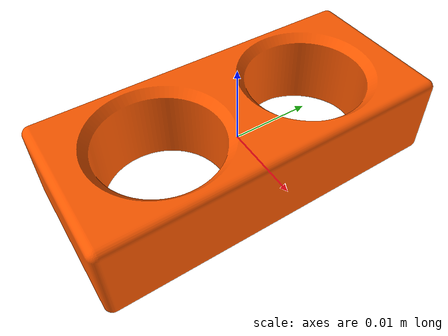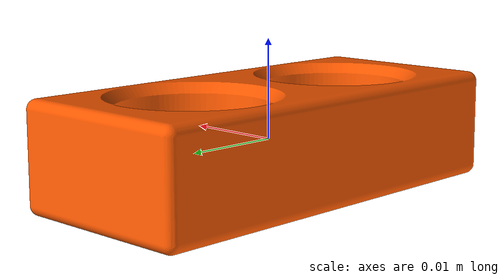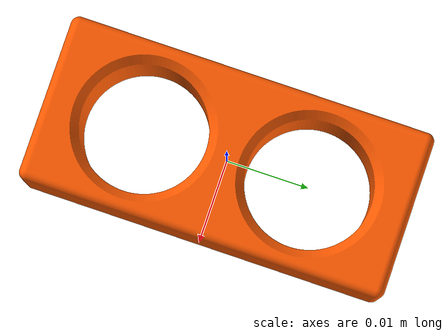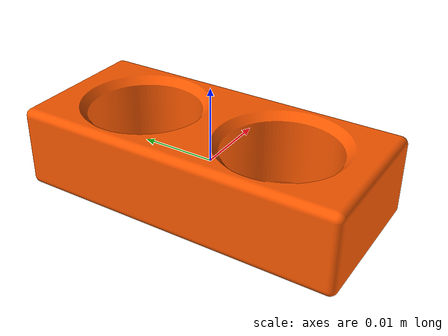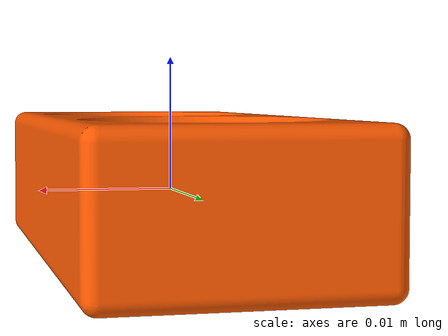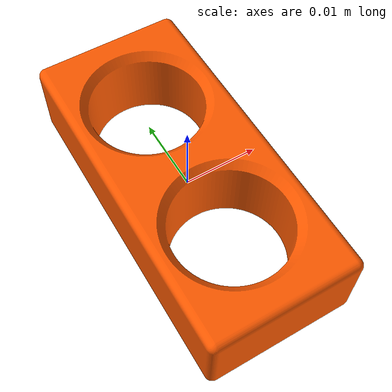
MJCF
<mujoco model="toy_five_insertion_two">
  <default>
    <default class="toy_five_insertion_two_visual">
      <geom group="2" type="mesh" contype="0" conaffinity="0"/>
    </default>
    <default class="toy_five_insertion_two_collision">
      <geom group="3" type="mesh"/>
    </default>
  </default>
  <asset>
    <material name="toy_five_insertion_two_material" specular="0.5" shininess="0.5" rgba="1 0.35152912 0 1"/>
    <mesh file="toy_five_insertion_two.obj"/>
    <mesh file="toy_five_insertion_two_collision_0.obj"/>
    <mesh file="toy_five_insertion_two_collision_1.obj"/>
    <mesh file="toy_five_insertion_two_collision_2.obj"/>
    <mesh file="toy_five_insertion_two_collision_3.obj"/>
    <mesh file="toy_five_insertion_two_collision_4.obj"/>
    <mesh file="toy_five_insertion_two_collision_5.obj"/>
    <mesh file="toy_five_insertion_two_collision_6.obj"/>
    <mesh file="toy_five_insertion_two_collision_7.obj"/>
    <mesh file="toy_five_insertion_two_collision_8.obj"/>
    <mesh file="toy_five_insertion_two_collision_9.obj"/>
    <mesh file="toy_five_insertion_two_collision_10.obj"/>
    <mesh file="toy_five_insertion_two_collision_11.obj"/>
    <mesh file="toy_five_insertion_two_collision_12.obj"/>
    <mesh file="toy_five_insertion_two_collision_13.obj"/>
    <mesh file="toy_five_insertion_two_collision_14.obj"/>
    <mesh file="toy_five_insertion_two_collision_15.obj"/>
    <mesh file="toy_five_insertion_two_collision_16.obj"/>
    <mesh file="toy_five_insertion_two_collision_17.obj"/>
    <mesh file="toy_five_insertion_two_collision_18.obj"/>
    <mesh file="toy_five_insertion_two_collision_19.obj"/>
    <mesh file="toy_five_insertion_two_collision_20.obj"/>
    <mesh file="toy_five_insertion_two_collision_21.obj"/>
    <mesh file="toy_five_insertion_two_collision_22.obj"/>
    <mesh file="toy_five_insertion_two_collision_23.obj"/>
    <mesh file="toy_five_insertion_two_collision_24.obj"/>
    <mesh file="toy_five_insertion_two_collision_25.obj"/>
    <mesh file="toy_five_insertion_two_collision_26.obj"/>
    <mesh file="toy_five_insertion_two_collision_27.obj"/>
    <mesh file="toy_five_insertion_two_collision_28.obj"/>
    <mesh file="toy_five_insertion_two_collision_29.obj"/>
    <mesh file="toy_five_insertion_two_collision_30.obj"/>
    <mesh file="toy_five_insertion_two_collision_31.obj"/>
    <mesh file="toy_five_insertion_two_collision_32.obj"/>
    <mesh file="toy_five_insertion_two_collision_33.obj"/>
    <mesh file="toy_five_insertion_two_collision_34.obj"/>
    <mesh file="toy_five_insertion_two_collision_35.obj"/>
    <mesh file="toy_five_insertion_two_collision_36.obj"/>
    <mesh file="toy_five_insertion_two_collision_37.obj"/>
    <mesh file="toy_five_insertion_two_collision_38.obj"/>
    <mesh file="toy_five_insertion_two_collision_39.obj"/>
    <mesh file="toy_five_insertion_two_collision_40.obj"/>
    <mesh file="toy_five_insertion_two_collision_41.obj"/>
  </asset>
  <worldbody>
    <body name="toy_five_insertion_two">
      <freejoint/>
      <geom material="toy_five_insertion_two_material" mesh="toy_five_insertion_two" class="toy_five_insertion_two_visual"/>
      <geom mesh="toy_five_insertion_two_collision_0" rgba="0.7994798533171938 0.9375432703284283 0.09707981335659155 1" class="toy_five_insertion_two_collision"/>
      <geom mesh="toy_five_insertion_two_collision_1" rgba="0.8934029678936114 0.9846819172238179 0.1916098615617452 1" class="toy_five_insertion_two_collision"/>
      <geom mesh="toy_five_insertion_two_collision_2" rgba="0.5369274378740223 0.6995427998961804 0.5794552580709885 1" class="toy_five_insertion_two_collision"/>
      <geom mesh="toy_five_insertion_two_collision_3" rgba="0.40999450267614235 0.6388397226716457 0.9910736526907409 1" class="toy_five_insertion_two_collision"/>
      <geom mesh="toy_five_insertion_two_collision_4" rgba="0.437431734262836 0.2568467392059577 0.1395890422095284 1" class="toy_five_insertion_two_collision"/>
      <geom mesh="toy_five_insertion_two_collision_5" rgba="0.3522389222467359 0.42940041138632457 0.7189049323124501 1" class="toy_five_insertion_two_collision"/>
      <geom mesh="toy_five_insertion_two_collision_6" rgba="0.8298101174327739 0.23068424015206923 0.32620563506871114 1" class="toy_five_insertion_two_collision"/>
      <geom mesh="toy_five_insertion_two_collision_7" rgba="0.5034178306036098 0.3360624863992532 0.7259439574362953 1" class="toy_five_insertion_two_collision"/>
      <geom mesh="toy_five_insertion_two_collision_8" rgba="0.10751519422101152 0.4052400356083793 0.8055384846424208 1" class="toy_five_insertion_two_collision"/>
      <geom mesh="toy_five_insertion_two_collision_9" rgba="0.5119149387572031 0.6617983917930427 0.6286808097330435 1" class="toy_five_insertion_two_collision"/>
      <geom mesh="toy_five_insertion_two_collision_10" rgba="0.8629761442540558 0.891814664044404 0.013639052107590532 1" class="toy_five_insertion_two_collision"/>
      <geom mesh="toy_five_insertion_two_collision_11" rgba="0.48451544070558983 0.6729833306055614 0.0036289572756447175 1" class="toy_five_insertion_two_collision"/>
      <geom mesh="toy_five_insertion_two_collision_12" rgba="0.5506440439725269 0.6968459481285527 0.25005984442125806 1" class="toy_five_insertion_two_collision"/>
      <geom mesh="toy_five_insertion_two_collision_13" rgba="0.5211149188071362 0.1799673759416126 0.7713000790887855 1" class="toy_five_insertion_two_collision"/>
      <geom mesh="toy_five_insertion_two_collision_14" rgba="0.5903949223930919 0.6203688160788862 0.18506869796854608 1" class="toy_five_insertion_two_collision"/>
      <geom mesh="toy_five_insertion_two_collision_15" rgba="0.10715529656096079 0.6113308975164543 0.31426577167556113 1" class="toy_five_insertion_two_collision"/>
      <geom mesh="toy_five_insertion_two_collision_16" rgba="0.04760693339707478 0.19303723447180232 0.3694831243699713 1" class="toy_five_insertion_two_collision"/>
      <geom mesh="toy_five_insertion_two_collision_17" rgba="0.3500823624825464 0.5219089509190306 0.5280304895304085 1" class="toy_five_insertion_two_collision"/>
      <geom mesh="toy_five_insertion_two_collision_18" rgba="0.6743849109012794 0.6782158723514627 0.05831376384937326 1" class="toy_five_insertion_two_collision"/>
      <geom mesh="toy_five_insertion_two_collision_19" rgba="0.42960871127833755 0.2135043315723042 0.2613647446411651 1" class="toy_five_insertion_two_collision"/>
      <geom mesh="toy_five_insertion_two_collision_20" rgba="0.003844297349568926 0.6275403630341951 0.10631567535604303 1" class="toy_five_insertion_two_collision"/>
      <geom mesh="toy_five_insertion_two_collision_21" rgba="0.701694298143719 0.4465690832924343 0.4554148392673356 1" class="toy_five_insertion_two_collision"/>
      <geom mesh="toy_five_insertion_two_collision_22" rgba="0.05044896491591988 0.9384432322970343 0.20516023722952326 1" class="toy_five_insertion_two_collision"/>
      <geom mesh="toy_five_insertion_two_collision_23" rgba="0.052100588385127766 0.8768054910659467 0.17668406173817097 1" class="toy_five_insertion_two_collision"/>
      <geom mesh="toy_five_insertion_two_collision_24" rgba="0.4418542019407924 0.15347768959080932 0.38344124737257057 1" class="toy_five_insertion_two_collision"/>
      <geom mesh="toy_five_insertion_two_collision_25" rgba="0.5742953308348082 0.6571704809844053 0.20749342771816448 1" class="toy_five_insertion_two_collision"/>
      <geom mesh="toy_five_insertion_two_collision_26" rgba="0.04064055957510693 0.7926971456815926 0.3312810495760309 1" class="toy_five_insertion_two_collision"/>
      <geom mesh="toy_five_insertion_two_collision_27" rgba="0.448940167187758 0.17602609238364253 0.8649908497772427 1" class="toy_five_insertion_two_collision"/>
      <geom mesh="toy_five_insertion_two_collision_28" rgba="0.8661071838552395 0.7091743580206182 0.06891734161290952 1" class="toy_five_insertion_two_collision"/>
      <geom mesh="toy_five_insertion_two_collision_29" rgba="0.7214668438489267 0.07441051987852654 0.7227784873217676 1" class="toy_five_insertion_two_collision"/>
      <geom mesh="toy_five_insertion_two_collision_30" rgba="0.6658526616390572 0.596331925353848 0.9844898749348281 1" class="toy_five_insertion_two_collision"/>
      <geom mesh="toy_five_insertion_two_collision_31" rgba="0.7879798920150494 0.7490274774510662 0.6909061113429104 1" class="toy_five_insertion_two_collision"/>
      <geom mesh="toy_five_insertion_two_collision_32" rgba="0.9928889902480689 0.45808837825770743 0.41706810008916306 1" class="toy_five_insertion_two_collision"/>
      <geom mesh="toy_five_insertion_two_collision_33" rgba="0.7814629787595048 0.4890140442173535 0.5298627934578886 1" class="toy_five_insertion_two_collision"/>
      <geom mesh="toy_five_insertion_two_collision_34" rgba="0.08751810851838648 0.5973386595085258 0.6158912982728674 1" class="toy_five_insertion_two_collision"/>
      <geom mesh="toy_five_insertion_two_collision_35" rgba="0.011035269756068833 0.9994360113080596 0.9258166264332731 1" class="toy_five_insertion_two_collision"/>
      <geom mesh="toy_five_insertion_two_collision_36" rgba="0.7547846569985667 0.5968028526069035 0.7156443627452225 1" class="toy_five_insertion_two_collision"/>
      <geom mesh="toy_five_insertion_two_collision_37" rgba="0.30751395025093275 0.2559334401691671 0.3455673382814355 1" class="toy_five_insertion_two_collision"/>
      <geom mesh="toy_five_insertion_two_collision_38" rgba="0.12752940369123889 0.6883265915178524 0.3239483275063836 1" class="toy_five_insertion_two_collision"/>
      <geom mesh="toy_five_insertion_two_collision_39" rgba="0.03573819096327202 0.30416425561606664 0.3912403276941958 1" class="toy_five_insertion_two_collision"/>
      <geom mesh="toy_five_insertion_two_collision_40" rgba="0.3466587171728396 0.5619314218123513 0.5686110605636818 1" class="toy_five_insertion_two_collision"/>
      <geom mesh="toy_five_insertion_two_collision_41" rgba="0.47345013899991417 0.2156062778967135 0.9372295587249897 1" class="toy_five_insertion_two_collision"/>
    </body>
  </worldbody>
</mujoco>
